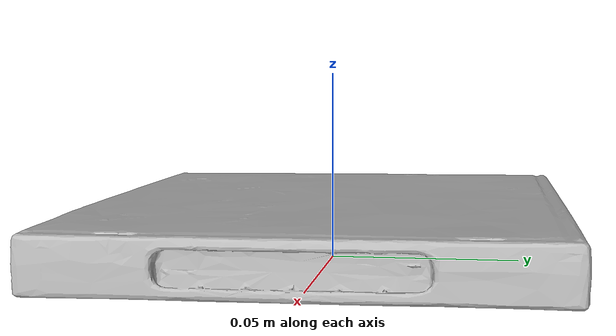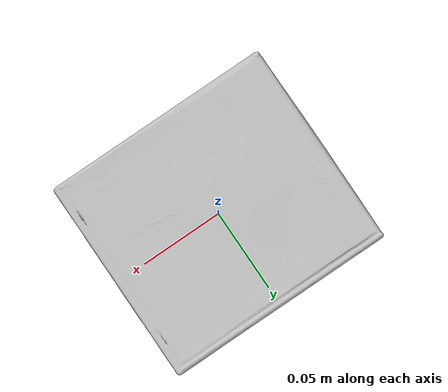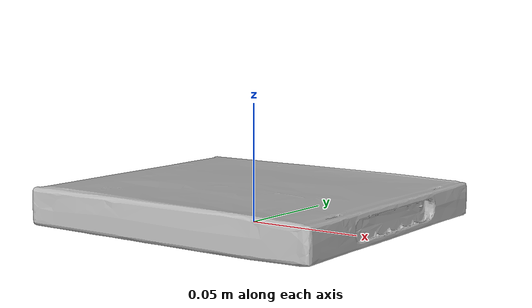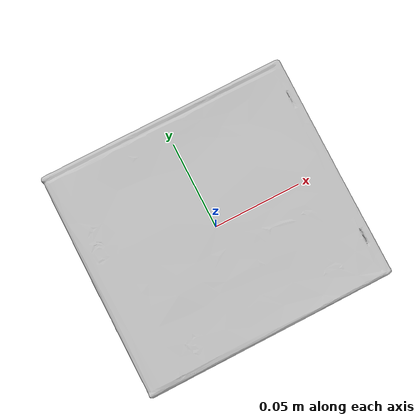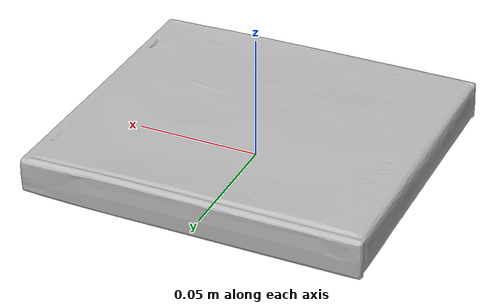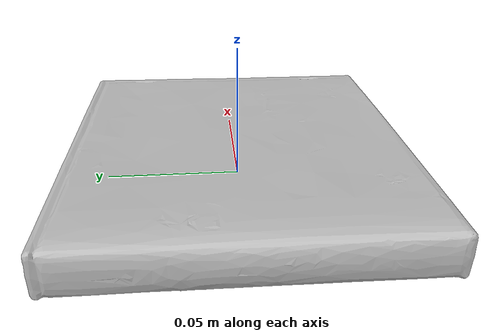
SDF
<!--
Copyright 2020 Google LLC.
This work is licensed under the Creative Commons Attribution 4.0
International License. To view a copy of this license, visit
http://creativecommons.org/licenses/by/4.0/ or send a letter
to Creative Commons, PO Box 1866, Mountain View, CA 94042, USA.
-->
<?xml version="1.0" ?>
<sdf version="1.6">
  <model name="Pokmon_Conquest_Nintendo_DS_Game">
    <link name="link_0">
      <visual name="visual">
        <geometry>
          <mesh>
            <uri>meshes/model.obj</uri>
          </mesh>
        </geometry>
      </visual>
      <collision name="collision_0">
        <geometry>
          <mesh>
            <uri>meshes/model.obj</uri>
          </mesh>
        </geometry>
      </collision>
    </link>
  </model>
</sdf>
